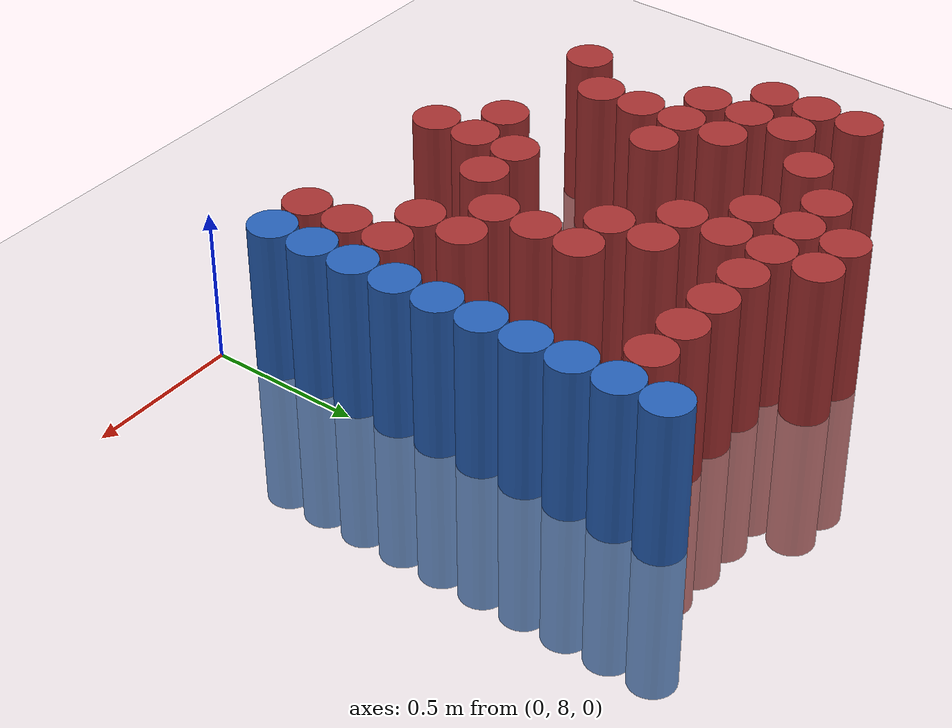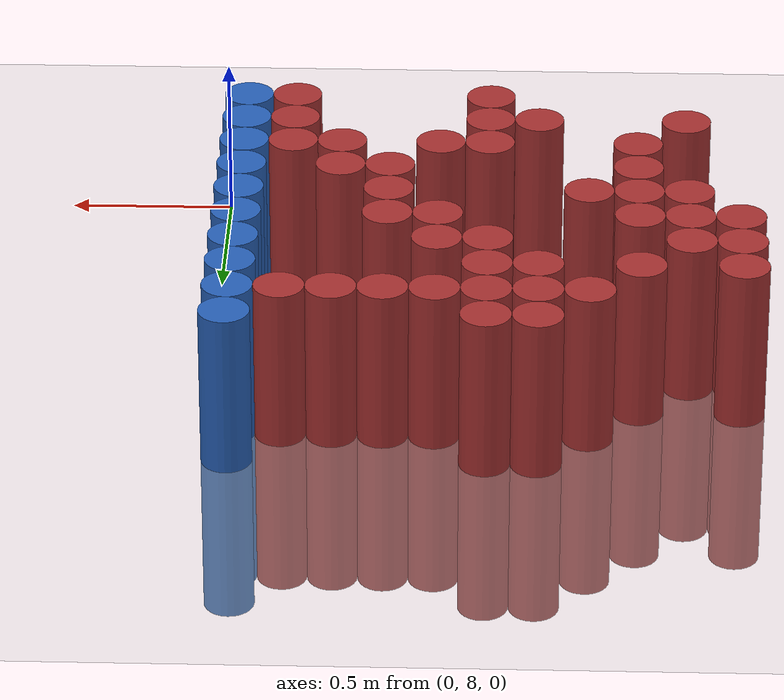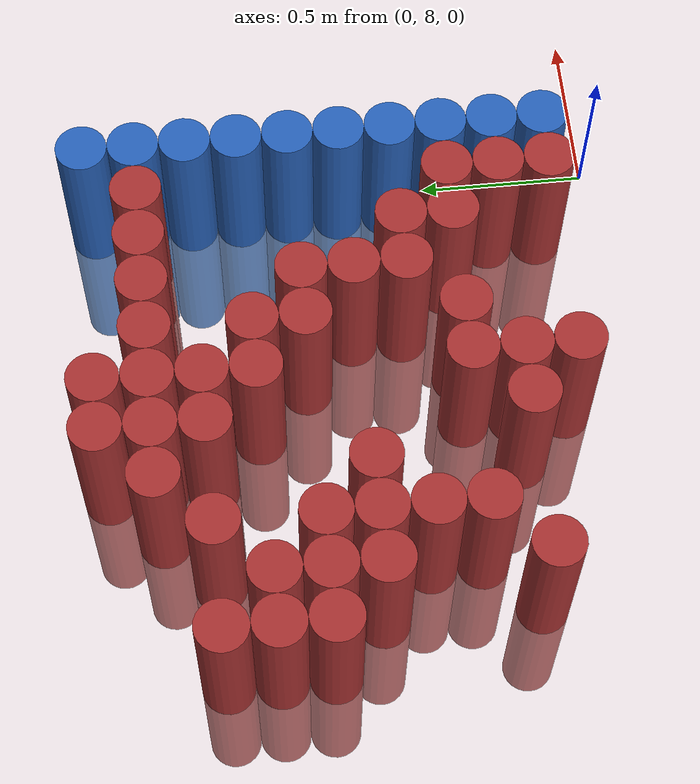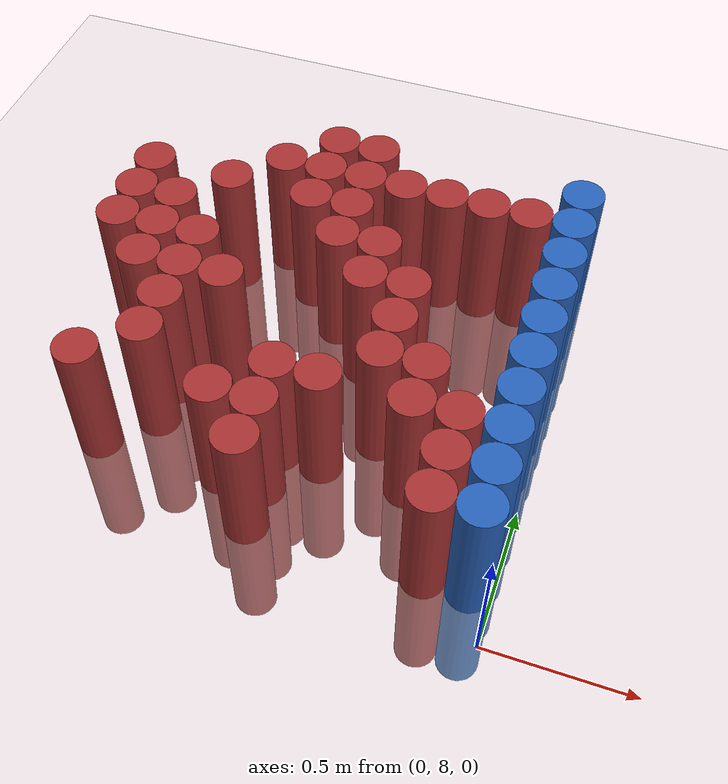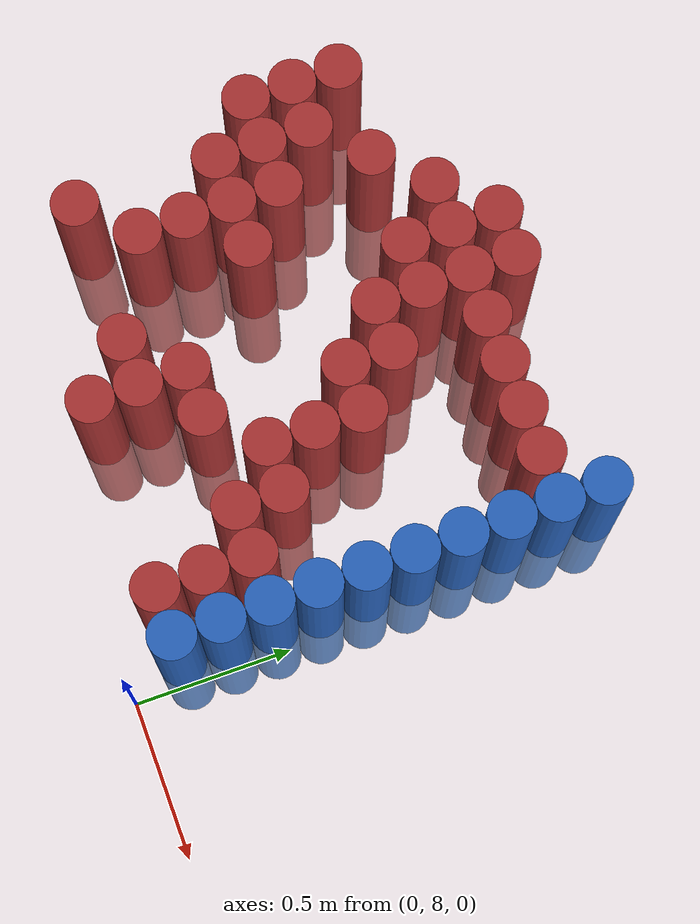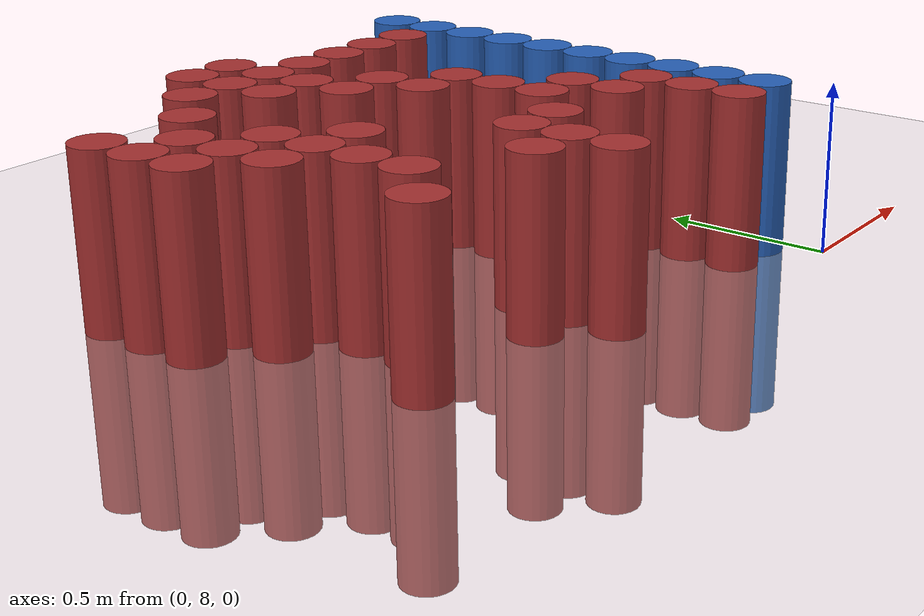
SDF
<sdf version="1.6">
 <world name="default">
  <model name="ground_plane">
   <static>1</static>
   <link name="link">
    <collision name="collision">
     <geometry><plane><normal>0 0 1</normal><size>100 100</size></plane></geometry>
     <surface><friction><ode><mu>100</mu><mu2>50</mu2></ode></friction></surface>
    </collision>
    <visual name="visual">
     <cast_shadows>0</cast_shadows>
     <geometry><plane><normal>0 0 1</normal><size>100 100</size></plane></geometry>
     <material>
      <script><uri>file://media/materials/scripts/gazebo.material</uri><name>Gazebo/Grey</name></script>
     </material>
    </visual>
   </link>
  </model>
  <model name="unit_cylinder_233">
   <static>1</static>
   <pose>-1.575000 8.925000 0.000000 0.000000 0.000000 0.000000</pose>
   <link name="link">
    <inertial>
     <mass>1</mass>
     <inertia><ixx>0.145833</ixx><ixy>0</ixy><ixz>0</ixz><iyy>0.145833</iyy><iyz>0</iyz><izz>0.125</izz></inertia>
    </inertial>
    <collision name="collision">
     <geometry><cylinder><radius>0.075000</radius><length>1</length></cylinder></geometry>
    </collision>
    <visual name="visual">
     <geometry><cylinder><radius>0.075000</radius><length>1</length></cylinder></geometry>
     <material>
      <ambient>0.648000 0.192000 0.192000 1</ambient>
      <diffuse>0.648000 0.192000 0.192000 1</diffuse>
     </material>
     <material>
      <script><name>Gazebo/Grey</name><uri>file://media/materials/scripts/gazebo.material</uri></script>
     </material>
    </visual>
   </link>
  </model>
  <model name="unit_cylinder_234">
   <static>1</static>
   <pose>-1.575000 9.075000 0.000000 0.000000 0.000000 0.000000</pose>
   <link name="link">
    <inertial>
     <mass>1</mass>
     <inertia><ixx>0.145833</ixx><ixy>0</ixy><ixz>0</ixz><iyy>0.145833</iyy><iyz>0</iyz><izz>0.125</izz></inertia>
    </inertial>
    <collision name="collision">
     <geometry><cylinder><radius>0.075000</radius><length>1</length></cylinder></geometry>
    </collision>
    <visual name="visual">
     <geometry><cylinder><radius>0.075000</radius><length>1</length></cylinder></geometry>
     <material>
      <ambient>0.648000 0.192000 0.192000 1</ambient>
      <diffuse>0.648000 0.192000 0.192000 1</diffuse>
     </material>
     <material>
      <script><name>Gazebo/Grey</name><uri>file://media/materials/scripts/gazebo.material</uri></script>
     </material>
    </visual>
   </link>
  </model>
  <model name="unit_cylinder_235">
   <static>1</static>
   <pose>-1.575000 9.225000 0.000000 0.000000 0.000000 0.000000</pose>
   <link name="link">
    <inertial>
     <mass>1</mass>
     <inertia><ixx>0.145833</ixx><ixy>0</ixy><ixz>0</ixz><iyy>0.145833</iyy><iyz>0</iyz><izz>0.125</izz></inertia>
    </inertial>
    <collision name="collision">
     <geometry><cylinder><radius>0.075000</radius><length>1</length></cylinder></geometry>
    </collision>
    <visual name="visual">
     <geometry><cylinder><radius>0.075000</radius><length>1</length></cylinder></geometry>
     <material>
      <ambient>0.648000 0.192000 0.192000 1</ambient>
      <diffuse>0.648000 0.192000 0.192000 1</diffuse>
     </material>
     <material>
      <script><name>Gazebo/Grey</name><uri>file://media/materials/scripts/gazebo.material</uri></script>
     </material>
    </visual>
   </link>
  </model>
  <model name="unit_cylinder_242">
   <static>1</static>
   <pose>-1.425000 8.325000 0.000000 0.000000 0.000000 0.000000</pose>
   <link name="link">
    <inertial>
     <mass>1</mass>
     <inertia><ixx>0.145833</ixx><ixy>0</ixy><ixz>0</ixz><iyy>0.145833</iyy><iyz>0</iyz><izz>0.125</izz></inertia>
    </inertial>
    <collision name="collision">
     <geometry><cylinder><radius>0.075000</radius><length>1</length></cylinder></geometry>
    </collision>
    <visual name="visual">
     <geometry><cylinder><radius>0.075000</radius><length>1</length></cylinder></geometry>
     <material>
      <ambient>0.648000 0.192000 0.192000 1</ambient>
      <diffuse>0.648000 0.192000 0.192000 1</diffuse>
     </material>
     <material>
      <script><name>Gazebo/Grey</name><uri>file://media/materials/scripts/gazebo.material</uri></script>
     </material>
    </visual>
   </link>
  </model>
  <model name="unit_cylinder_243">
   <static>1</static>
   <pose>-1.425000 8.775000 0.000000 0.000000 0.000000 0.000000</pose>
   <link name="link">
    <inertial>
     <mass>1</mass>
     <inertia><ixx>0.145833</ixx><ixy>0</ixy><ixz>0</ixz><iyy>0.145833</iyy><iyz>0</iyz><izz>0.125</izz></inertia>
    </inertial>
    <collision name="collision">
     <geometry><cylinder><radius>0.075000</radius><length>1</length></cylinder></geometry>
    </collision>
    <visual name="visual">
     <geometry><cylinder><radius>0.075000</radius><length>1</length></cylinder></geometry>
     <material>
      <ambient>0.648000 0.192000 0.192000 1</ambient>
      <diffuse>0.648000 0.192000 0.192000 1</diffuse>
     </material>
     <material>
      <script><name>Gazebo/Grey</name><uri>file://media/materials/scripts/gazebo.material</uri></script>
     </material>
    </visual>
   </link>
  </model>
  <model name="unit_cylinder_244">
   <static>1</static>
   <pose>-1.425000 8.925000 0.000000 0.000000 0.000000 0.000000</pose>
   <link name="link">
    <inertial>
     <mass>1</mass>
     <inertia><ixx>0.145833</ixx><ixy>0</ixy><ixz>0</ixz><iyy>0.145833</iyy><iyz>0</iyz><izz>0.125</izz></inertia>
    </inertial>
    <collision name="collision">
     <geometry><cylinder><radius>0.075000</radius><length>1</length></cylinder></geometry>
    </collision>
    <visual name="visual">
     <geometry><cylinder><radius>0.075000</radius><length>1</length></cylinder></geometry>
     <material>
      <ambient>0.648000 0.192000 0.192000 1</ambient>
      <diffuse>0.648000 0.192000 0.192000 1</diffuse>
     </material>
     <material>
      <script><name>Gazebo/Grey</name><uri>file://media/materials/scripts/gazebo.material</uri></script>
     </material>
    </visual>
   </link>
  </model>
  <model name="unit_cylinder_245">
   <static>1</static>
   <pose>-1.425000 9.075000 0.000000 0.000000 0.000000 0.000000</pose>
   <link name="link">
    <inertial>
     <mass>1</mass>
     <inertia><ixx>0.145833</ixx><ixy>0</ixy><ixz>0</ixz><iyy>0.145833</iyy><iyz>0</iyz><izz>0.125</izz></inertia>
    </inertial>
    <collision name="collision">
     <geometry><cylinder><radius>0.075000</radius><length>1</length></cylinder></geometry>
    </collision>
    <visual name="visual">
     <geometry><cylinder><radius>0.075000</radius><length>1</length></cylinder></geometry>
     <material>
      <ambient>0.648000 0.192000 0.192000 1</ambient>
      <diffuse>0.648000 0.192000 0.192000 1</diffuse>
     </material>
     <material>
      <script><name>Gazebo/Grey</name><uri>file://media/materials/scripts/gazebo.material</uri></script>
     </material>
    </visual>
   </link>
  </model>
  <model name="unit_cylinder_251">
   <static>1</static>
   <pose>-1.275000 8.475000 0.000000 0.000000 0.000000 0.000000</pose>
   <link name="link">
    <inertial>
     <mass>1</mass>
     <inertia><ixx>0.145833</ixx><ixy>0</ixy><ixz>0</ixz><iyy>0.145833</iyy><iyz>0</iyz><izz>0.125</izz></inertia>
    </inertial>
    <collision name="collision">
     <geometry><cylinder><radius>0.075000</radius><length>1</length></cylinder></geometry>
    </collision>
    <visual name="visual">
     <geometry><cylinder><radius>0.075000</radius><length>1</length></cylinder></geometry>
     <material>
      <ambient>0.648000 0.192000 0.192000 1</ambient>
      <diffuse>0.648000 0.192000 0.192000 1</diffuse>
     </material>
     <material>
      <script><name>Gazebo/Grey</name><uri>file://media/materials/scripts/gazebo.material</uri></script>
     </material>
    </visual>
   </link>
  </model>
  <model name="unit_cylinder_252">
   <static>1</static>
   <pose>-1.275000 8.625000 0.000000 0.000000 0.000000 0.000000</pose>
   <link name="link">
    <inertial>
     <mass>1</mass>
     <inertia><ixx>0.145833</ixx><ixy>0</ixy><ixz>0</ixz><iyy>0.145833</iyy><iyz>0</iyz><izz>0.125</izz></inertia>
    </inertial>
    <collision name="collision">
     <geometry><cylinder><radius>0.075000</radius><length>1</length></cylinder></geometry>
    </collision>
    <visual name="visual">
     <geometry><cylinder><radius>0.075000</radius><length>1</length></cylinder></geometry>
     <material>
      <ambient>0.648000 0.192000 0.192000 1</ambient>
      <diffuse>0.648000 0.192000 0.192000 1</diffuse>
     </material>
     <material>
      <script><name>Gazebo/Grey</name><uri>file://media/materials/scripts/gazebo.material</uri></script>
     </material>
    </visual>
   </link>
  </model>
  <model name="unit_cylinder_253">
   <static>1</static>
   <pose>-1.275000 8.775000 0.000000 0.000000 0.000000 0.000000</pose>
   <link name="link">
    <inertial>
     <mass>1</mass>
     <inertia><ixx>0.145833</ixx><ixy>0</ixy><ixz>0</ixz><iyy>0.145833</iyy><iyz>0</iyz><izz>0.125</izz></inertia>
    </inertial>
    <collision name="collision">
     <geometry><cylinder><radius>0.075000</radius><length>1</length></cylinder></geometry>
    </collision>
    <visual name="visual">
     <geometry><cylinder><radius>0.075000</radius><length>1</length></cylinder></geometry>
     <material>
      <ambient>0.648000 0.192000 0.192000 1</ambient>
      <diffuse>0.648000 0.192000 0.192000 1</diffuse>
     </material>
     <material>
      <script><name>Gazebo/Grey</name><uri>file://media/materials/scripts/gazebo.material</uri></script>
     </material>
    </visual>
   </link>
  </model>
  <model name="unit_cylinder_254">
   <static>1</static>
   <pose>-1.275000 8.925000 0.000000 0.000000 0.000000 0.000000</pose>
   <link name="link">
    <inertial>
     <mass>1</mass>
     <inertia><ixx>0.145833</ixx><ixy>0</ixy><ixz>0</ixz><iyy>0.145833</iyy><iyz>0</iyz><izz>0.125</izz></inertia>
    </inertial>
    <collision name="collision">
     <geometry><cylinder><radius>0.075000</radius><length>1</length></cylinder></geometry>
    </collision>
    <visual name="visual">
     <geometry><cylinder><radius>0.075000</radius><length>1</length></cylinder></geometry>
     <material>
      <ambient>0.648000 0.192000 0.192000 1</ambient>
      <diffuse>0.648000 0.192000 0.192000 1</diffuse>
     </material>
     <material>
      <script><name>Gazebo/Grey</name><uri>file://media/materials/scripts/gazebo.material</uri></script>
     </material>
    </visual>
   </link>
  </model>
  <model name="unit_cylinder_255">
   <static>1</static>
   <pose>-1.275000 9.225000 0.000000 0.000000 0.000000 0.000000</pose>
   <link name="link">
    <inertial>
     <mass>1</mass>
     <inertia><ixx>0.145833</ixx><ixy>0</ixy><ixz>0</ixz><iyy>0.145833</iyy><iyz>0</iyz><izz>0.125</izz></inertia>
    </inertial>
    <collision name="collision">
     <geometry><cylinder><radius>0.075000</radius><length>1</length></cylinder></geometry>
    </collision>
    <visual name="visual">
     <geometry><cylinder><radius>0.075000</radius><length>1</length></cylinder></geometry>
     <material>
      <ambient>0.648000 0.192000 0.192000 1</ambient>
      <diffuse>0.648000 0.192000 0.192000 1</diffuse>
     </material>
     <material>
      <script><name>Gazebo/Grey</name><uri>file://media/materials/scripts/gazebo.material</uri></script>
     </material>
    </visual>
   </link>
  </model>
  <model name="unit_cylinder_258">
   <static>1</static>
   <pose>-1.125000 8.775000 0.000000 0.000000 0.000000 0.000000</pose>
   <link name="link">
    <inertial>
     <mass>1</mass>
     <inertia><ixx>0.145833</ixx><ixy>0</ixy><ixz>0</ixz><iyy>0.145833</iyy><iyz>0</iyz><izz>0.125</izz></inertia>
    </inertial>
    <collision name="collision">
     <geometry><cylinder><radius>0.075000</radius><length>1</length></cylinder></geometry>
    </collision>
    <visual name="visual">
     <geometry><cylinder><radius>0.075000</radius><length>1</length></cylinder></geometry>
     <material>
      <ambient>0.648000 0.192000 0.192000 1</ambient>
      <diffuse>0.648000 0.192000 0.192000 1</diffuse>
     </material>
     <material>
      <script><name>Gazebo/Grey</name><uri>file://media/materials/scripts/gazebo.material</uri></script>
     </material>
    </visual>
   </link>
  </model>
  <model name="unit_cylinder_259">
   <static>1</static>
   <pose>-1.125000 9.375000 0.000000 0.000000 0.000000 0.000000</pose>
   <link name="link">
    <inertial>
     <mass>1</mass>
     <inertia><ixx>0.145833</ixx><ixy>0</ixy><ixz>0</ixz><iyy>0.145833</iyy><iyz>0</iyz><izz>0.125</izz></inertia>
    </inertial>
    <collision name="collision">
     <geometry><cylinder><radius>0.075000</radius><length>1</length></cylinder></geometry>
    </collision>
    <visual name="visual">
     <geometry><cylinder><radius>0.075000</radius><length>1</length></cylinder></geometry>
     <material>
      <ambient>0.648000 0.192000 0.192000 1</ambient>
      <diffuse>0.648000 0.192000 0.192000 1</diffuse>
     </material>
     <material>
      <script><name>Gazebo/Grey</name><uri>file://media/materials/scripts/gazebo.material</uri></script>
     </material>
    </visual>
   </link>
  </model>
  <model name="unit_cylinder_262">
   <static>1</static>
   <pose>-0.975000 8.325000 0.000000 0.000000 0.000000 0.000000</pose>
   <link name="link">
    <inertial>
     <mass>1</mass>
     <inertia><ixx>0.145833</ixx><ixy>0</ixy><ixz>0</ixz><iyy>0.145833</iyy><iyz>0</iyz><izz>0.125</izz></inertia>
    </inertial>
    <collision name="collision">
     <geometry><cylinder><radius>0.075000</radius><length>1</length></cylinder></geometry>
    </collision>
    <visual name="visual">
     <geometry><cylinder><radius>0.075000</radius><length>1</length></cylinder></geometry>
     <material>
      <ambient>0.648000 0.192000 0.192000 1</ambient>
      <diffuse>0.648000 0.192000 0.192000 1</diffuse>
     </material>
     <material>
      <script><name>Gazebo/Grey</name><uri>file://media/materials/scripts/gazebo.material</uri></script>
     </material>
    </visual>
   </link>
  </model>
  <model name="unit_cylinder_263">
   <static>1</static>
   <pose>-0.975000 9.225000 0.000000 0.000000 0.000000 0.000000</pose>
   <link name="link">
    <inertial>
     <mass>1</mass>
     <inertia><ixx>0.145833</ixx><ixy>0</ixy><ixz>0</ixz><iyy>0.145833</iyy><iyz>0</iyz><izz>0.125</izz></inertia>
    </inertial>
    <collision name="collision">
     <geometry><cylinder><radius>0.075000</radius><length>1</length></cylinder></geometry>
    </collision>
    <visual name="visual">
     <geometry><cylinder><radius>0.075000</radius><length>1</length></cylinder></geometry>
     <material>
      <ambient>0.648000 0.192000 0.192000 1</ambient>
      <diffuse>0.648000 0.192000 0.192000 1</diffuse>
     </material>
     <material>
      <script><name>Gazebo/Grey</name><uri>file://media/materials/scripts/gazebo.material</uri></script>
     </material>
    </visual>
   </link>
  </model>
  <model name="unit_cylinder_264">
   <static>1</static>
   <pose>-0.975000 9.375000 0.000000 0.000000 0.000000 0.000000</pose>
   <link name="link">
    <inertial>
     <mass>1</mass>
     <inertia><ixx>0.145833</ixx><ixy>0</ixy><ixz>0</ixz><iyy>0.145833</iyy><iyz>0</iyz><izz>0.125</izz></inertia>
    </inertial>
    <collision name="collision">
     <geometry><cylinder><radius>0.075000</radius><length>1</length></cylinder></geometry>
    </collision>
    <visual name="visual">
     <geometry><cylinder><radius>0.075000</radius><length>1</length></cylinder></geometry>
     <material>
      <ambient>0.648000 0.192000 0.192000 1</ambient>
      <diffuse>0.648000 0.192000 0.192000 1</diffuse>
     </material>
     <material>
      <script><name>Gazebo/Grey</name><uri>file://media/materials/scripts/gazebo.material</uri></script>
     </material>
    </visual>
   </link>
  </model>
  <model name="unit_cylinder_265">
   <static>1</static>
   <pose>-0.975000 9.525000 0.000000 0.000000 0.000000 0.000000</pose>
   <link name="link">
    <inertial>
     <mass>1</mass>
     <inertia><ixx>0.145833</ixx><ixy>0</ixy><ixz>0</ixz><iyy>0.145833</iyy><iyz>0</iyz><izz>0.125</izz></inertia>
    </inertial>
    <collision name="collision">
     <geometry><cylinder><radius>0.075000</radius><length>1</length></cylinder></geometry>
    </collision>
    <visual name="visual">
     <geometry><cylinder><radius>0.075000</radius><length>1</length></cylinder></geometry>
     <material>
      <ambient>0.648000 0.192000 0.192000 1</ambient>
      <diffuse>0.648000 0.192000 0.192000 1</diffuse>
     </material>
     <material>
      <script><name>Gazebo/Grey</name><uri>file://media/materials/scripts/gazebo.material</uri></script>
     </material>
    </visual>
   </link>
  </model>
  <model name="unit_cylinder_268">
   <static>1</static>
   <pose>-0.825000 8.175000 0.000000 0.000000 0.000000 0.000000</pose>
   <link name="link">
    <inertial>
     <mass>1</mass>
     <inertia><ixx>0.145833</ixx><ixy>0</ixy><ixz>0</ixz><iyy>0.145833</iyy><iyz>0</iyz><izz>0.125</izz></inertia>
    </inertial>
    <collision name="collision">
     <geometry><cylinder><radius>0.075000</radius><length>1</length></cylinder></geometry>
    </collision>
    <visual name="visual">
     <geometry><cylinder><radius>0.075000</radius><length>1</length></cylinder></geometry>
     <material>
      <ambient>0.648000 0.192000 0.192000 1</ambient>
      <diffuse>0.648000 0.192000 0.192000 1</diffuse>
     </material>
     <material>
      <script><name>Gazebo/Grey</name><uri>file://media/materials/scripts/gazebo.material</uri></script>
     </material>
    </visual>
   </link>
  </model>
  <model name="unit_cylinder_269">
   <static>1</static>
   <pose>-0.825000 8.325000 0.000000 0.000000 0.000000 0.000000</pose>
   <link name="link">
    <inertial>
     <mass>1</mass>
     <inertia><ixx>0.145833</ixx><ixy>0</ixy><ixz>0</ixz><iyy>0.145833</iyy><iyz>0</iyz><izz>0.125</izz></inertia>
    </inertial>
    <collision name="collision">
     <geometry><cylinder><radius>0.075000</radius><length>1</length></cylinder></geometry>
    </collision>
    <visual name="visual">
     <geometry><cylinder><radius>0.075000</radius><length>1</length></cylinder></geometry>
     <material>
      <ambient>0.648000 0.192000 0.192000 1</ambient>
      <diffuse>0.648000 0.192000 0.192000 1</diffuse>
     </material>
     <material>
      <script><name>Gazebo/Grey</name><uri>file://media/materials/scripts/gazebo.material</uri></script>
     </material>
    </visual>
   </link>
  </model>
  <model name="unit_cylinder_270">
   <static>1</static>
   <pose>-0.825000 8.475000 0.000000 0.000000 0.000000 0.000000</pose>
   <link name="link">
    <inertial>
     <mass>1</mass>
     <inertia><ixx>0.145833</ixx><ixy>0</ixy><ixz>0</ixz><iyy>0.145833</iyy><iyz>0</iyz><izz>0.125</izz></inertia>
    </inertial>
    <collision name="collision">
     <geometry><cylinder><radius>0.075000</radius><length>1</length></cylinder></geometry>
    </collision>
    <visual name="visual">
     <geometry><cylinder><radius>0.075000</radius><length>1</length></cylinder></geometry>
     <material>
      <ambient>0.648000 0.192000 0.192000 1</ambient>
      <diffuse>0.648000 0.192000 0.192000 1</diffuse>
     </material>
     <material>
      <script><name>Gazebo/Grey</name><uri>file://media/materials/scripts/gazebo.material</uri></script>
     </material>
    </visual>
   </link>
  </model>
  <model name="unit_cylinder_271">
   <static>1</static>
   <pose>-0.825000 9.075000 0.000000 0.000000 0.000000 0.000000</pose>
   <link name="link">
    <inertial>
     <mass>1</mass>
     <inertia><ixx>0.145833</ixx><ixy>0</ixy><ixz>0</ixz><iyy>0.145833</iyy><iyz>0</iyz><izz>0.125</izz></inertia>
    </inertial>
    <collision name="collision">
     <geometry><cylinder><radius>0.075000</radius><length>1</length></cylinder></geometry>
    </collision>
    <visual name="visual">
     <geometry><cylinder><radius>0.075000</radius><length>1</length></cylinder></geometry>
     <material>
      <ambient>0.648000 0.192000 0.192000 1</ambient>
      <diffuse>0.648000 0.192000 0.192000 1</diffuse>
     </material>
     <material>
      <script><name>Gazebo/Grey</name><uri>file://media/materials/scripts/gazebo.material</uri></script>
     </material>
    </visual>
   </link>
  </model>
  <model name="unit_cylinder_272">
   <static>1</static>
   <pose>-0.825000 9.225000 0.000000 0.000000 0.000000 0.000000</pose>
   <link name="link">
    <inertial>
     <mass>1</mass>
     <inertia><ixx>0.145833</ixx><ixy>0</ixy><ixz>0</ixz><iyy>0.145833</iyy><iyz>0</iyz><izz>0.125</izz></inertia>
    </inertial>
    <collision name="collision">
     <geometry><cylinder><radius>0.075000</radius><length>1</length></cylinder></geometry>
    </collision>
    <visual name="visual">
     <geometry><cylinder><radius>0.075000</radius><length>1</length></cylinder></geometry>
     <material>
      <ambient>0.648000 0.192000 0.192000 1</ambient>
      <diffuse>0.648000 0.192000 0.192000 1</diffuse>
     </material>
     <material>
      <script><name>Gazebo/Grey</name><uri>file://media/materials/scripts/gazebo.material</uri></script>
     </material>
    </visual>
   </link>
  </model>
  <model name="unit_cylinder_273">
   <static>1</static>
   <pose>-0.825000 9.375000 0.000000 0.000000 0.000000 0.000000</pose>
   <link name="link">
    <inertial>
     <mass>1</mass>
     <inertia><ixx>0.145833</ixx><ixy>0</ixy><ixz>0</ixz><iyy>0.145833</iyy><iyz>0</iyz><izz>0.125</izz></inertia>
    </inertial>
    <collision name="collision">
     <geometry><cylinder><radius>0.075000</radius><length>1</length></cylinder></geometry>
    </collision>
    <visual name="visual">
     <geometry><cylinder><radius>0.075000</radius><length>1</length></cylinder></geometry>
     <material>
      <ambient>0.648000 0.192000 0.192000 1</ambient>
      <diffuse>0.648000 0.192000 0.192000 1</diffuse>
     </material>
     <material>
      <script><name>Gazebo/Grey</name><uri>file://media/materials/scripts/gazebo.material</uri></script>
     </material>
    </visual>
   </link>
  </model>
  <model name="unit_cylinder_274">
   <static>1</static>
   <pose>-0.825000 9.525000 0.000000 0.000000 0.000000 0.000000</pose>
   <link name="link">
    <inertial>
     <mass>1</mass>
     <inertia><ixx>0.145833</ixx><ixy>0</ixy><ixz>0</ixz><iyy>0.145833</iyy><iyz>0</iyz><izz>0.125</izz></inertia>
    </inertial>
    <collision name="collision">
     <geometry><cylinder><radius>0.075000</radius><length>1</length></cylinder></geometry>
    </collision>
    <visual name="visual">
     <geometry><cylinder><radius>0.075000</radius><length>1</length></cylinder></geometry>
     <material>
      <ambient>0.648000 0.192000 0.192000 1</ambient>
      <diffuse>0.648000 0.192000 0.192000 1</diffuse>
     </material>
     <material>
      <script><name>Gazebo/Grey</name><uri>file://media/materials/scripts/gazebo.material</uri></script>
     </material>
    </visual>
   </link>
  </model>
  <model name="unit_cylinder_283">
   <static>1</static>
   <pose>-0.675000 8.475000 0.000000 0.000000 0.000000 0.000000</pose>
   <link name="link">
    <inertial>
     <mass>1</mass>
     <inertia><ixx>0.145833</ixx><ixy>0</ixy><ixz>0</ixz><iyy>0.145833</iyy><iyz>0</iyz><izz>0.125</izz></inertia>
    </inertial>
    <collision name="collision">
     <geometry><cylinder><radius>0.075000</radius><length>1</length></cylinder></geometry>
    </collision>
    <visual name="visual">
     <geometry><cylinder><radius>0.075000</radius><length>1</length></cylinder></geometry>
     <material>
      <ambient>0.648000 0.192000 0.192000 1</ambient>
      <diffuse>0.648000 0.192000 0.192000 1</diffuse>
     </material>
     <material>
      <script><name>Gazebo/Grey</name><uri>file://media/materials/scripts/gazebo.material</uri></script>
     </material>
    </visual>
   </link>
  </model>
  <model name="unit_cylinder_284">
   <static>1</static>
   <pose>-0.675000 8.925000 0.000000 0.000000 0.000000 0.000000</pose>
   <link name="link">
    <inertial>
     <mass>1</mass>
     <inertia><ixx>0.145833</ixx><ixy>0</ixy><ixz>0</ixz><iyy>0.145833</iyy><iyz>0</iyz><izz>0.125</izz></inertia>
    </inertial>
    <collision name="collision">
     <geometry><cylinder><radius>0.075000</radius><length>1</length></cylinder></geometry>
    </collision>
    <visual name="visual">
     <geometry><cylinder><radius>0.075000</radius><length>1</length></cylinder></geometry>
     <material>
      <ambient>0.648000 0.192000 0.192000 1</ambient>
      <diffuse>0.648000 0.192000 0.192000 1</diffuse>
     </material>
     <material>
      <script><name>Gazebo/Grey</name><uri>file://media/materials/scripts/gazebo.material</uri></script>
     </material>
    </visual>
   </link>
  </model>
  <model name="unit_cylinder_285">
   <static>1</static>
   <pose>-0.675000 9.075000 0.000000 0.000000 0.000000 0.000000</pose>
   <link name="link">
    <inertial>
     <mass>1</mass>
     <inertia><ixx>0.145833</ixx><ixy>0</ixy><ixz>0</ixz><iyy>0.145833</iyy><iyz>0</iyz><izz>0.125</izz></inertia>
    </inertial>
    <collision name="collision">
     <geometry><cylinder><radius>0.075000</radius><length>1</length></cylinder></geometry>
    </collision>
    <visual name="visual">
     <geometry><cylinder><radius>0.075000</radius><length>1</length></cylinder></geometry>
     <material>
      <ambient>0.648000 0.192000 0.192000 1</ambient>
      <diffuse>0.648000 0.192000 0.192000 1</diffuse>
     </material>
     <material>
      <script><name>Gazebo/Grey</name><uri>file://media/materials/scripts/gazebo.material</uri></script>
     </material>
    </visual>
   </link>
  </model>
  <model name="unit_cylinder_286">
   <static>1</static>
   <pose>-0.675000 9.375000 0.000000 0.000000 0.000000 0.000000</pose>
   <link name="link">
    <inertial>
     <mass>1</mass>
     <inertia><ixx>0.145833</ixx><ixy>0</ixy><ixz>0</ixz><iyy>0.145833</iyy><iyz>0</iyz><izz>0.125</izz></inertia>
    </inertial>
    <collision name="collision">
     <geometry><cylinder><radius>0.075000</radius><length>1</length></cylinder></geometry>
    </collision>
    <visual name="visual">
     <geometry><cylinder><radius>0.075000</radius><length>1</length></cylinder></geometry>
     <material>
      <ambient>0.648000 0.192000 0.192000 1</ambient>
      <diffuse>0.648000 0.192000 0.192000 1</diffuse>
     </material>
     <material>
      <script><name>Gazebo/Grey</name><uri>file://media/materials/scripts/gazebo.material</uri></script>
     </material>
    </visual>
   </link>
  </model>
  <model name="unit_cylinder_294">
   <static>1</static>
   <pose>-0.525000 8.625000 0.000000 0.000000 0.000000 0.000000</pose>
   <link name="link">
    <inertial>
     <mass>1</mass>
     <inertia><ixx>0.145833</ixx><ixy>0</ixy><ixz>0</ixz><iyy>0.145833</iyy><iyz>0</iyz><izz>0.125</izz></inertia>
    </inertial>
    <collision name="collision">
     <geometry><cylinder><radius>0.075000</radius><length>1</length></cylinder></geometry>
    </collision>
    <visual name="visual">
     <geometry><cylinder><radius>0.075000</radius><length>1</length></cylinder></geometry>
     <material>
      <ambient>0.648000 0.192000 0.192000 1</ambient>
      <diffuse>0.648000 0.192000 0.192000 1</diffuse>
     </material>
     <material>
      <script><name>Gazebo/Grey</name><uri>file://media/materials/scripts/gazebo.material</uri></script>
     </material>
    </visual>
   </link>
  </model>
  <model name="unit_cylinder_295">
   <static>1</static>
   <pose>-0.525000 8.775000 0.000000 0.000000 0.000000 0.000000</pose>
   <link name="link">
    <inertial>
     <mass>1</mass>
     <inertia><ixx>0.145833</ixx><ixy>0</ixy><ixz>0</ixz><iyy>0.145833</iyy><iyz>0</iyz><izz>0.125</izz></inertia>
    </inertial>
    <collision name="collision">
     <geometry><cylinder><radius>0.075000</radius><length>1</length></cylinder></geometry>
    </collision>
    <visual name="visual">
     <geometry><cylinder><radius>0.075000</radius><length>1</length></cylinder></geometry>
     <material>
      <ambient>0.648000 0.192000 0.192000 1</ambient>
      <diffuse>0.648000 0.192000 0.192000 1</diffuse>
     </material>
     <material>
      <script><name>Gazebo/Grey</name><uri>file://media/materials/scripts/gazebo.material</uri></script>
     </material>
    </visual>
   </link>
  </model>
  <model name="unit_cylinder_296">
   <static>1</static>
   <pose>-0.525000 8.925000 0.000000 0.000000 0.000000 0.000000</pose>
   <link name="link">
    <inertial>
     <mass>1</mass>
     <inertia><ixx>0.145833</ixx><ixy>0</ixy><ixz>0</ixz><iyy>0.145833</iyy><iyz>0</iyz><izz>0.125</izz></inertia>
    </inertial>
    <collision name="collision">
     <geometry><cylinder><radius>0.075000</radius><length>1</length></cylinder></geometry>
    </collision>
    <visual name="visual">
     <geometry><cylinder><radius>0.075000</radius><length>1</length></cylinder></geometry>
     <material>
      <ambient>0.648000 0.192000 0.192000 1</ambient>
      <diffuse>0.648000 0.192000 0.192000 1</diffuse>
     </material>
     <material>
      <script><name>Gazebo/Grey</name><uri>file://media/materials/scripts/gazebo.material</uri></script>
     </material>
    </visual>
   </link>
  </model>
  <model name="unit_cylinder_297">
   <static>1</static>
   <pose>-0.525000 9.375000 0.000000 0.000000 0.000000 0.000000</pose>
   <link name="link">
    <inertial>
     <mass>1</mass>
     <inertia><ixx>0.145833</ixx><ixy>0</ixy><ixz>0</ixz><iyy>0.145833</iyy><iyz>0</iyz><izz>0.125</izz></inertia>
    </inertial>
    <collision name="collision">
     <geometry><cylinder><radius>0.075000</radius><length>1</length></cylinder></geometry>
    </collision>
    <visual name="visual">
     <geometry><cylinder><radius>0.075000</radius><length>1</length></cylinder></geometry>
     <material>
      <ambient>0.648000 0.192000 0.192000 1</ambient>
      <diffuse>0.648000 0.192000 0.192000 1</diffuse>
     </material>
     <material>
      <script><name>Gazebo/Grey</name><uri>file://media/materials/scripts/gazebo.material</uri></script>
     </material>
    </visual>
   </link>
  </model>
  <model name="unit_cylinder_306">
   <static>1</static>
   <pose>-0.375000 8.475000 0.000000 0.000000 0.000000 0.000000</pose>
   <link name="link">
    <inertial>
     <mass>1</mass>
     <inertia><ixx>0.145833</ixx><ixy>0</ixy><ixz>0</ixz><iyy>0.145833</iyy><iyz>0</iyz><izz>0.125</izz></inertia>
    </inertial>
    <collision name="collision">
     <geometry><cylinder><radius>0.075000</radius><length>1</length></cylinder></geometry>
    </collision>
    <visual name="visual">
     <geometry><cylinder><radius>0.075000</radius><length>1</length></cylinder></geometry>
     <material>
      <ambient>0.648000 0.192000 0.192000 1</ambient>
      <diffuse>0.648000 0.192000 0.192000 1</diffuse>
     </material>
     <material>
      <script><name>Gazebo/Grey</name><uri>file://media/materials/scripts/gazebo.material</uri></script>
     </material>
    </visual>
   </link>
  </model>
  <model name="unit_cylinder_307">
   <static>1</static>
   <pose>-0.375000 8.625000 0.000000 0.000000 0.000000 0.000000</pose>
   <link name="link">
    <inertial>
     <mass>1</mass>
     <inertia><ixx>0.145833</ixx><ixy>0</ixy><ixz>0</ixz><iyy>0.145833</iyy><iyz>0</iyz><izz>0.125</izz></inertia>
    </inertial>
    <collision name="collision">
     <geometry><cylinder><radius>0.075000</radius><length>1</length></cylinder></geometry>
    </collision>
    <visual name="visual">
     <geometry><cylinder><radius>0.075000</radius><length>1</length></cylinder></geometry>
     <material>
      <ambient>0.648000 0.192000 0.192000 1</ambient>
      <diffuse>0.648000 0.192000 0.192000 1</diffuse>
     </material>
     <material>
      <script><name>Gazebo/Grey</name><uri>file://media/materials/scripts/gazebo.material</uri></script>
     </material>
    </visual>
   </link>
  </model>
  <model name="unit_cylinder_308">
   <static>1</static>
   <pose>-0.375000 9.375000 0.000000 0.000000 0.000000 0.000000</pose>
   <link name="link">
    <inertial>
     <mass>1</mass>
     <inertia><ixx>0.145833</ixx><ixy>0</ixy><ixz>0</ixz><iyy>0.145833</iyy><iyz>0</iyz><izz>0.125</izz></inertia>
    </inertial>
    <collision name="collision">
     <geometry><cylinder><radius>0.075000</radius><length>1</length></cylinder></geometry>
    </collision>
    <visual name="visual">
     <geometry><cylinder><radius>0.075000</radius><length>1</length></cylinder></geometry>
     <material>
      <ambient>0.648000 0.192000 0.192000 1</ambient>
      <diffuse>0.648000 0.192000 0.192000 1</diffuse>
     </material>
     <material>
      <script><name>Gazebo/Grey</name><uri>file://media/materials/scripts/gazebo.material</uri></script>
     </material>
    </visual>
   </link>
  </model>
  <model name="unit_cylinder_313">
   <static>1</static>
   <pose>-0.225000 8.175000 0.000000 0.000000 0.000000 0.000000</pose>
   <link name="link">
    <inertial>
     <mass>1</mass>
     <inertia><ixx>0.145833</ixx><ixy>0</ixy><ixz>0</ixz><iyy>0.145833</iyy><iyz>0</iyz><izz>0.125</izz></inertia>
    </inertial>
    <collision name="collision">
     <geometry><cylinder><radius>0.075000</radius><length>1</length></cylinder></geometry>
    </collision>
    <visual name="visual">
     <geometry><cylinder><radius>0.075000</radius><length>1</length></cylinder></geometry>
     <material>
      <ambient>0.648000 0.192000 0.192000 1</ambient>
      <diffuse>0.648000 0.192000 0.192000 1</diffuse>
     </material>
     <material>
      <script><name>Gazebo/Grey</name><uri>file://media/materials/scripts/gazebo.material</uri></script>
     </material>
    </visual>
   </link>
  </model>
  <model name="unit_cylinder_314">
   <static>1</static>
   <pose>-0.225000 8.325000 0.000000 0.000000 0.000000 0.000000</pose>
   <link name="link">
    <inertial>
     <mass>1</mass>
     <inertia><ixx>0.145833</ixx><ixy>0</ixy><ixz>0</ixz><iyy>0.145833</iyy><iyz>0</iyz><izz>0.125</izz></inertia>
    </inertial>
    <collision name="collision">
     <geometry><cylinder><radius>0.075000</radius><length>1</length></cylinder></geometry>
    </collision>
    <visual name="visual">
     <geometry><cylinder><radius>0.075000</radius><length>1</length></cylinder></geometry>
     <material>
      <ambient>0.648000 0.192000 0.192000 1</ambient>
      <diffuse>0.648000 0.192000 0.192000 1</diffuse>
     </material>
     <material>
      <script><name>Gazebo/Grey</name><uri>file://media/materials/scripts/gazebo.material</uri></script>
     </material>
    </visual>
   </link>
  </model>
  <model name="unit_cylinder_315">
   <static>1</static>
   <pose>-0.225000 8.475000 0.000000 0.000000 0.000000 0.000000</pose>
   <link name="link">
    <inertial>
     <mass>1</mass>
     <inertia><ixx>0.145833</ixx><ixy>0</ixy><ixz>0</ixz><iyy>0.145833</iyy><iyz>0</iyz><izz>0.125</izz></inertia>
    </inertial>
    <collision name="collision">
     <geometry><cylinder><radius>0.075000</radius><length>1</length></cylinder></geometry>
    </collision>
    <visual name="visual">
     <geometry><cylinder><radius>0.075000</radius><length>1</length></cylinder></geometry>
     <material>
      <ambient>0.648000 0.192000 0.192000 1</ambient>
      <diffuse>0.648000 0.192000 0.192000 1</diffuse>
     </material>
     <material>
      <script><name>Gazebo/Grey</name><uri>file://media/materials/scripts/gazebo.material</uri></script>
     </material>
    </visual>
   </link>
  </model>
  <model name="unit_cylinder_316">
   <static>1</static>
   <pose>-0.225000 9.375000 0.000000 0.000000 0.000000 0.000000</pose>
   <link name="link">
    <inertial>
     <mass>1</mass>
     <inertia><ixx>0.145833</ixx><ixy>0</ixy><ixz>0</ixz><iyy>0.145833</iyy><iyz>0</iyz><izz>0.125</izz></inertia>
    </inertial>
    <collision name="collision">
     <geometry><cylinder><radius>0.075000</radius><length>1</length></cylinder></geometry>
    </collision>
    <visual name="visual">
     <geometry><cylinder><radius>0.075000</radius><length>1</length></cylinder></geometry>
     <material>
      <ambient>0.648000 0.192000 0.192000 1</ambient>
      <diffuse>0.648000 0.192000 0.192000 1</diffuse>
     </material>
     <material>
      <script><name>Gazebo/Grey</name><uri>file://media/materials/scripts/gazebo.material</uri></script>
     </material>
    </visual>
   </link>
  </model>
  <model name="unit_cylinder_337">
   <static>1</static>
   <pose>-0.075000 8.175000 0.000000 0.000000 0.000000 0.000000</pose>
   <link name="link">
    <inertial>
     <mass>1</mass>
     <inertia><ixx>0.145833</ixx><ixy>0</ixy><ixz>0</ixz><iyy>0.145833</iyy><iyz>0</iyz><izz>0.125</izz></inertia>
    </inertial>
    <collision name="collision">
     <geometry><cylinder><radius>0.075000</radius><length>1</length></cylinder></geometry>
    </collision>
    <visual name="visual">
     <geometry><cylinder><radius>0.075000</radius><length>1</length></cylinder></geometry>
     <material>
      <ambient>0.152000 0.379000 0.720000 1</ambient>
      <diffuse>0.152000 0.379000 0.720000 1</diffuse>
     </material>
     <material>
      <script><name>Gazebo/Grey</name><uri>file://media/materials/scripts/gazebo.material</uri></script>
     </material>
    </visual>
   </link>
  </model>
  <model name="unit_cylinder_338">
   <static>1</static>
   <pose>-0.075000 8.325000 0.000000 0.000000 0.000000 0.000000</pose>
   <link name="link">
    <inertial>
     <mass>1</mass>
     <inertia><ixx>0.145833</ixx><ixy>0</ixy><ixz>0</ixz><iyy>0.145833</iyy><iyz>0</iyz><izz>0.125</izz></inertia>
    </inertial>
    <collision name="collision">
     <geometry><cylinder><radius>0.075000</radius><length>1</length></cylinder></geometry>
    </collision>
    <visual name="visual">
     <geometry><cylinder><radius>0.075000</radius><length>1</length></cylinder></geometry>
     <material>
      <ambient>0.152000 0.379000 0.720000 1</ambient>
      <diffuse>0.152000 0.379000 0.720000 1</diffuse>
     </material>
     <material>
      <script><name>Gazebo/Grey</name><uri>file://media/materials/scripts/gazebo.material</uri></script>
     </material>
    </visual>
   </link>
  </model>
  <model name="unit_cylinder_339">
   <static>1</static>
   <pose>-0.075000 8.475000 0.000000 0.000000 0.000000 0.000000</pose>
   <link name="link">
    <inertial>
     <mass>1</mass>
     <inertia><ixx>0.145833</ixx><ixy>0</ixy><ixz>0</ixz><iyy>0.145833</iyy><iyz>0</iyz><izz>0.125</izz></inertia>
    </inertial>
    <collision name="collision">
     <geometry><cylinder><radius>0.075000</radius><length>1</length></cylinder></geometry>
    </collision>
    <visual name="visual">
     <geometry><cylinder><radius>0.075000</radius><length>1</length></cylinder></geometry>
     <material>
      <ambient>0.152000 0.379000 0.720000 1</ambient>
      <diffuse>0.152000 0.379000 0.720000 1</diffuse>
     </material>
     <material>
      <script><name>Gazebo/Grey</name><uri>file://media/materials/scripts/gazebo.material</uri></script>
     </material>
    </visual>
   </link>
  </model>
  <model name="unit_cylinder_340">
   <static>1</static>
   <pose>-0.075000 8.625000 0.000000 0.000000 0.000000 0.000000</pose>
   <link name="link">
    <inertial>
     <mass>1</mass>
     <inertia><ixx>0.145833</ixx><ixy>0</ixy><ixz>0</ixz><iyy>0.145833</iyy><iyz>0</iyz><izz>0.125</izz></inertia>
    </inertial>
    <collision name="collision">
     <geometry><cylinder><radius>0.075000</radius><length>1</length></cylinder></geometry>
    </collision>
    <visual name="visual">
     <geometry><cylinder><radius>0.075000</radius><length>1</length></cylinder></geometry>
     <material>
      <ambient>0.152000 0.379000 0.720000 1</ambient>
      <diffuse>0.152000 0.379000 0.720000 1</diffuse>
     </material>
     <material>
      <script><name>Gazebo/Grey</name><uri>file://media/materials/scripts/gazebo.material</uri></script>
     </material>
    </visual>
   </link>
  </model>
  <model name="unit_cylinder_341">
   <static>1</static>
   <pose>-0.075000 8.775000 0.000000 0.000000 0.000000 0.000000</pose>
   <link name="link">
    <inertial>
     <mass>1</mass>
     <inertia><ixx>0.145833</ixx><ixy>0</ixy><ixz>0</ixz><iyy>0.145833</iyy><iyz>0</iyz><izz>0.125</izz></inertia>
    </inertial>
    <collision name="collision">
     <geometry><cylinder><radius>0.075000</radius><length>1</length></cylinder></geometry>
    </collision>
    <visual name="visual">
     <geometry><cylinder><radius>0.075000</radius><length>1</length></cylinder></geometry>
     <material>
      <ambient>0.152000 0.379000 0.720000 1</ambient>
      <diffuse>0.152000 0.379000 0.720000 1</diffuse>
     </material>
     <material>
      <script><name>Gazebo/Grey</name><uri>file://media/materials/scripts/gazebo.material</uri></script>
     </material>
    </visual>
   </link>
  </model>
  <model name="unit_cylinder_342">
   <static>1</static>
   <pose>-0.075000 8.925000 0.000000 0.000000 0.000000 0.000000</pose>
   <link name="link">
    <inertial>
     <mass>1</mass>
     <inertia><ixx>0.145833</ixx><ixy>0</ixy><ixz>0</ixz><iyy>0.145833</iyy><iyz>0</iyz><izz>0.125</izz></inertia>
    </inertial>
    <collision name="collision">
     <geometry><cylinder><radius>0.075000</radius><length>1</length></cylinder></geometry>
    </collision>
    <visual name="visual">
     <geometry><cylinder><radius>0.075000</radius><length>1</length></cylinder></geometry>
     <material>
      <ambient>0.152000 0.379000 0.720000 1</ambient>
      <diffuse>0.152000 0.379000 0.720000 1</diffuse>
     </material>
     <material>
      <script><name>Gazebo/Grey</name><uri>file://media/materials/scripts/gazebo.material</uri></script>
     </material>
    </visual>
   </link>
  </model>
  <model name="unit_cylinder_343">
   <static>1</static>
   <pose>-0.075000 9.075000 0.000000 0.000000 0.000000 0.000000</pose>
   <link name="link">
    <inertial>
     <mass>1</mass>
     <inertia><ixx>0.145833</ixx><ixy>0</ixy><ixz>0</ixz><iyy>0.145833</iyy><iyz>0</iyz><izz>0.125</izz></inertia>
    </inertial>
    <collision name="collision">
     <geometry><cylinder><radius>0.075000</radius><length>1</length></cylinder></geometry>
    </collision>
    <visual name="visual">
     <geometry><cylinder><radius>0.075000</radius><length>1</length></cylinder></geometry>
     <material>
      <ambient>0.152000 0.379000 0.720000 1</ambient>
      <diffuse>0.152000 0.379000 0.720000 1</diffuse>
     </material>
     <material>
      <script><name>Gazebo/Grey</name><uri>file://media/materials/scripts/gazebo.material</uri></script>
     </material>
    </visual>
   </link>
  </model>
  <model name="unit_cylinder_344">
   <static>1</static>
   <pose>-0.075000 9.225000 0.000000 0.000000 0.000000 0.000000</pose>
   <link name="link">
    <inertial>
     <mass>1</mass>
     <inertia><ixx>0.145833</ixx><ixy>0</ixy><ixz>0</ixz><iyy>0.145833</iyy><iyz>0</iyz><izz>0.125</izz></inertia>
    </inertial>
    <collision name="collision">
     <geometry><cylinder><radius>0.075000</radius><length>1</length></cylinder></geometry>
    </collision>
    <visual name="visual">
     <geometry><cylinder><radius>0.075000</radius><length>1</length></cylinder></geometry>
     <material>
      <ambient>0.152000 0.379000 0.720000 1</ambient>
      <diffuse>0.152000 0.379000 0.720000 1</diffuse>
     </material>
     <material>
      <script><name>Gazebo/Grey</name><uri>file://media/materials/scripts/gazebo.material</uri></script>
     </material>
    </visual>
   </link>
  </model>
  <model name="unit_cylinder_345">
   <static>1</static>
   <pose>-0.075000 9.375000 0.000000 0.000000 0.000000 0.000000</pose>
   <link name="link">
    <inertial>
     <mass>1</mass>
     <inertia><ixx>0.145833</ixx><ixy>0</ixy><ixz>0</ixz><iyy>0.145833</iyy><iyz>0</iyz><izz>0.125</izz></inertia>
    </inertial>
    <collision name="collision">
     <geometry><cylinder><radius>0.075000</radius><length>1</length></cylinder></geometry>
    </collision>
    <visual name="visual">
     <geometry><cylinder><radius>0.075000</radius><length>1</length></cylinder></geometry>
     <material>
      <ambient>0.152000 0.379000 0.720000 1</ambient>
      <diffuse>0.152000 0.379000 0.720000 1</diffuse>
     </material>
     <material>
      <script><name>Gazebo/Grey</name><uri>file://media/materials/scripts/gazebo.material</uri></script>
     </material>
    </visual>
   </link>
  </model>
  <model name="unit_cylinder_346">
   <static>1</static>
   <pose>-0.075000 9.525000 0.000000 0.000000 0.000000 0.000000</pose>
   <link name="link">
    <inertial>
     <mass>1</mass>
     <inertia><ixx>0.145833</ixx><ixy>0</ixy><ixz>0</ixz><iyy>0.145833</iyy><iyz>0</iyz><izz>0.125</izz></inertia>
    </inertial>
    <collision name="collision">
     <geometry><cylinder><radius>0.075000</radius><length>1</length></cylinder></geometry>
    </collision>
    <visual name="visual">
     <geometry><cylinder><radius>0.075000</radius><length>1</length></cylinder></geometry>
     <material>
      <ambient>0.152000 0.379000 0.720000 1</ambient>
      <diffuse>0.152000 0.379000 0.720000 1</diffuse>
     </material>
     <material>
      <script><name>Gazebo/Grey</name><uri>file://media/materials/scripts/gazebo.material</uri></script>
     </material>
    </visual>
   </link>
  </model>
 </world>
</sdf>
